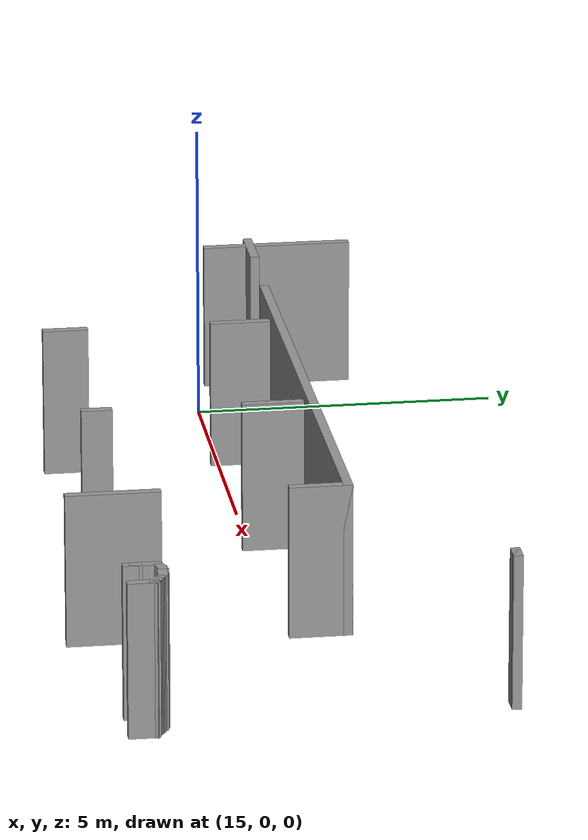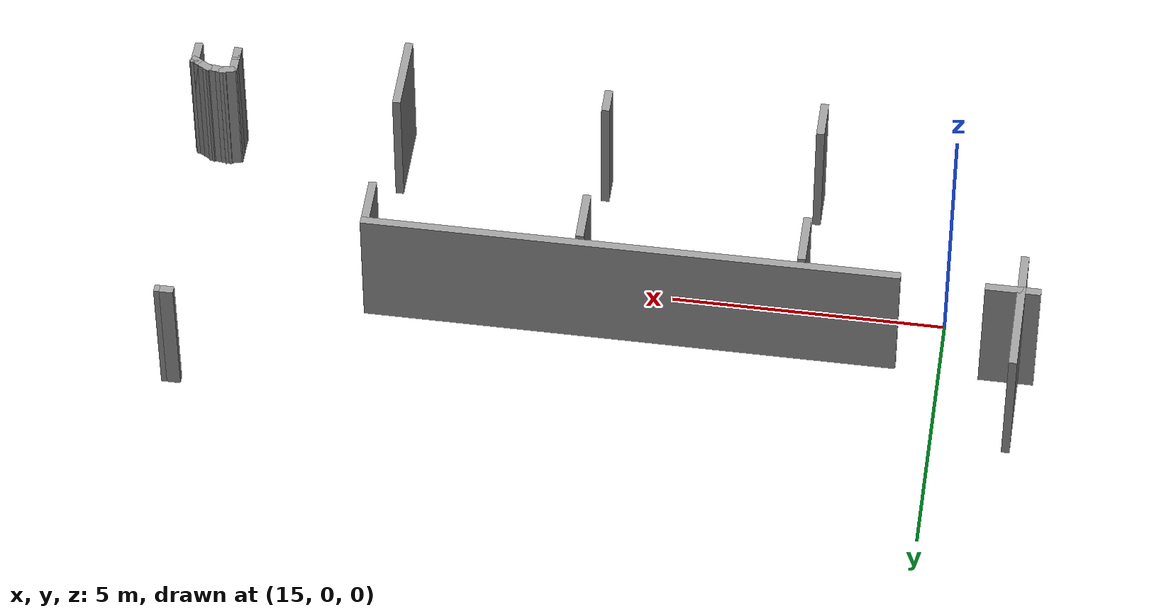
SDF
<sdf version="1.6">
 <model name="draft3">
  <pose>34.2026 -2.81154 0 0 -0 0</pose>
  <link name="Wall_26">
   <collision name="Wall_26_Collision">
    <geometry><box><size>1 0.15 2.5</size></box></geometry>
    <pose>0 0 1.25 0 -0 0</pose>
   </collision>
   <visual name="Wall_26_Visual">
    <pose>0 0 1.25 0 -0 0</pose>
    <geometry><box><size>1 0.15 2.5</size></box></geometry>
    <material>
     <script><uri>file://media/materials/scripts/gazebo.material</uri><name>Gazebo/Grey</name></script>
     <ambient>1 1 1 1</ambient>
    </material>
   </visual>
   <pose>-20.418 3.88071 0 0 -0 0</pose>
  </link>
  <link name="Wall_28">
   <collision name="Wall_28_Collision">
    <geometry><box><size>2.5 0.15 2.5</size></box></geometry>
    <pose>0 0 1.25 0 -0 0</pose>
   </collision>
   <visual name="Wall_28_Visual">
    <pose>0 0 1.25 0 -0 0</pose>
    <geometry><box><size>2.5 0.15 2.5</size></box></geometry>
    <material>
     <script><uri>file://media/materials/scripts/gazebo.material</uri><name>Gazebo/Grey</name></script>
     <ambient>1 1 1 1</ambient>
    </material>
   </visual>
   <pose>-20.5638 4.33405 0 0 0 -1.5708</pose>
  </link>
  <link name="Wall_30">
   <collision name="Wall_30_Collision">
    <geometry><box><size>9.75 0.15 2.5</size></box></geometry>
    <pose>0 0 1.25 0 -0 0</pose>
   </collision>
   <visual name="Wall_30_Visual">
    <pose>0 0 1.25 0 -0 0</pose>
    <geometry><box><size>9.75 0.15 2.5</size></box></geometry>
    <material>
     <script><uri>file://media/materials/scripts/gazebo.material</uri><name>Gazebo/Grey</name></script>
     <ambient>1 1 1 1</ambient>
    </material>
   </visual>
   <pose>-13.5307 3.83419 0 0 -0 0</pose>
  </link>
  <link name="Wall_32">
   <collision name="Wall_32_Collision">
    <geometry><box><size>1 0.15 2.5</size></box></geometry>
    <pose>0 0 1.25 0 -0 0</pose>
   </collision>
   <visual name="Wall_32_Visual">
    <pose>0 0 1.25 0 -0 0</pose>
    <geometry><box><size>1 0.15 2.5</size></box></geometry>
    <material>
     <script><uri>file://media/materials/scripts/gazebo.material</uri><name>Gazebo/Grey</name></script>
     <ambient>1 1 1 1</ambient>
    </material>
   </visual>
   <pose>-8.7307 3.40919 0 0 0 -1.5708</pose>
  </link>
  <link name="Wall_34">
   <collision name="Wall_34_Collision">
    <geometry><box><size>1 0.15 2.5</size></box></geometry>
    <pose>0 0 1.25 0 -0 0</pose>
   </collision>
   <visual name="Wall_34_Visual">
    <pose>0 0 1.25 0 -0 0</pose>
    <geometry><box><size>1 0.15 2.5</size></box></geometry>
    <material>
     <script><uri>file://media/materials/scripts/gazebo.material</uri><name>Gazebo/Grey</name></script>
     <ambient>1 1 1 1</ambient>
    </material>
   </visual>
   <pose>-16.6093 3.18914 0 0 -0 1.5708</pose>
  </link>
  <link name="Wall_36">
   <collision name="Wall_36_Collision">
    <geometry><box><size>1 0.15 2.5</size></box></geometry>
    <pose>0 0 1.25 0 -0 0</pose>
   </collision>
   <visual name="Wall_36_Visual">
    <pose>0 0 1.25 0 -0 0</pose>
    <geometry><box><size>1 0.15 2.5</size></box></geometry>
    <material>
     <script><uri>file://media/materials/scripts/gazebo.material</uri><name>Gazebo/Grey</name></script>
     <ambient>1 1 1 1</ambient>
    </material>
   </visual>
   <pose>-12.6083 3.18914 0 0 -0 1.5708</pose>
  </link>
  <link name="Wall_38">
   <collision name="Wall_38_Collision">
    <geometry><box><size>0.75 0.15 2.5</size></box></geometry>
    <pose>0 0 1.25 0 -0 0</pose>
   </collision>
   <visual name="Wall_38_Visual">
    <pose>0 0 1.25 0 -0 0</pose>
    <geometry><box><size>0.75 0.15 2.5</size></box></geometry>
    <material>
     <script><uri>file://media/materials/scripts/gazebo.material</uri><name>Gazebo/Grey</name></script>
     <ambient>1 1 1 1</ambient>
    </material>
   </visual>
   <pose>-16.6093 0.277516 0 0 0 -1.5708</pose>
  </link>
  <link name="Wall_40">
   <collision name="Wall_40_Collision">
    <geometry><box><size>0.5 0.15 2.5</size></box></geometry>
    <pose>0 0 1.25 0 -0 0</pose>
   </collision>
   <visual name="Wall_40_Visual">
    <pose>0 0 1.25 0 -0 0</pose>
    <geometry><box><size>0.5 0.15 2.5</size></box></geometry>
    <material>
     <script><uri>file://media/materials/scripts/gazebo.material</uri><name>Gazebo/Grey</name></script>
     <ambient>1 1 1 1</ambient>
    </material>
   </visual>
   <pose>-12.6548 0.355992 0 0 0 -1.5708</pose>
  </link>
  <link name="Wall_42">
   <collision name="Wall_42_Collision">
    <geometry><box><size>1.5 0.15 2.5</size></box></geometry>
    <pose>0 0 1.25 0 -0 0</pose>
   </collision>
   <visual name="Wall_42_Visual">
    <pose>0 0 1.25 0 -0 0</pose>
    <geometry><box><size>1.5 0.15 2.5</size></box></geometry>
    <material>
     <script><uri>file://media/materials/scripts/gazebo.material</uri><name>Gazebo/Grey</name></script>
     <ambient>1 1 1 1</ambient>
    </material>
   </visual>
   <pose>-8.83982 0.181659 0 0 0 -1.5708</pose>
  </link>
  <link name="Wall_449">
   <collision name="Wall_449_Collision">
    <geometry><box><size>0.25 0.15 2.5</size></box></geometry>
    <pose>0 0 1.25 0 -0 0</pose>
   </collision>
   <visual name="Wall_449_Visual">
    <pose>0 0 1.25 0 -0 0</pose>
    <geometry><box><size>0.25 0.15 2.5</size></box></geometry>
    <material>
     <script><uri>file://media/materials/scripts/gazebo.material</uri><name>Gazebo/Grey</name></script>
     <ambient>1 1 1 1</ambient>
    </material>
   </visual>
   <pose>-5.50882 5.926 0 0 -0 0</pose>
  </link>
  <link name="Wall_450">
   <collision name="Wall_450_Collision">
    <geometry><box><size>0.25 0.15 2.5</size></box></geometry>
    <pose>0 0 1.25 0 -0 0</pose>
   </collision>
   <visual name="Wall_450_Visual">
    <pose>0 0 1.25 0 -0 0</pose>
    <geometry><box><size>0.25 0.15 2.5</size></box></geometry>
    <material>
     <script><uri>file://media/materials/scripts/gazebo.material</uri><name>Gazebo/Grey</name></script>
     <ambient>1 1 1 1</ambient>
    </material>
   </visual>
   <pose>-5.40882 5.926 0 0 -0 0</pose>
  </link>
  <link name="Wall_468">
   <collision name="Wall_468_Collision">
    <geometry><box><size>0.3 0.15 2.5</size></box></geometry>
    <pose>0 0 1.25 0 -0 0</pose>
   </collision>
   <visual name="Wall_468_Visual">
    <pose>0 0 1.25 0 -0 0</pose>
    <geometry><box><size>0.3 0.15 2.5</size></box></geometry>
    <material>
     <script><uri>file://media/materials/scripts/gazebo.material</uri><name>Gazebo/Grey</name></script>
     <ambient>1 1 1 1</ambient>
    </material>
   </visual>
   <pose>-5.73702 0.419079 0 0 -0 1.5708</pose>
  </link>
  <link name="Wall_469">
   <collision name="Wall_469_Collision">
    <geometry><box><size>0.5 0.15 2.5</size></box></geometry>
    <pose>0 0 1.25 0 -0 0</pose>
   </collision>
   <visual name="Wall_469_Visual">
    <pose>0 0 1.25 0 -0 0</pose>
    <geometry><box><size>0.5 0.15 2.5</size></box></geometry>
    <material>
     <script><uri>file://media/materials/scripts/gazebo.material</uri><name>Gazebo/Grey</name></script>
     <ambient>1 1 1 1</ambient>
    </material>
   </visual>
   <pose>-5.73702 0.319078 0 0 0 -1.5708</pose>
  </link>
  <link name="Wall_470">
   <collision name="Wall_470_Collision">
    <geometry><box><size>0.25 0.15 2.5</size></box></geometry>
    <pose>0 0 1.25 0 -0 0</pose>
   </collision>
   <visual name="Wall_470_Visual">
    <pose>0 0 1.25 0 -0 0</pose>
    <geometry><box><size>0.25 0.15 2.5</size></box></geometry>
    <material>
     <script><uri>file://media/materials/scripts/gazebo.material</uri><name>Gazebo/Grey</name></script>
     <ambient>1 1 1 1</ambient>
    </material>
   </visual>
   <pose>-5.73702 0.094079 0 0 0 -1.5708</pose>
  </link>
  <link name="Wall_480">
   <collision name="Wall_480_Collision">
    <geometry><box><size>0.5 0.15 2.5</size></box></geometry>
    <pose>0 0 1.25 0 -0 0</pose>
   </collision>
   <visual name="Wall_480_Visual">
    <pose>0 0 1.25 0 -0 0</pose>
    <geometry><box><size>0.5 0.15 2.5</size></box></geometry>
    <material>
     <script><uri>file://media/materials/scripts/gazebo.material</uri><name>Gazebo/Grey</name></script>
     <ambient>1 1 1 1</ambient>
    </material>
   </visual>
   <pose>-5.00168 0.203187 0 0 -0 1.5708</pose>
  </link>
  <link name="Wall_481">
   <collision name="Wall_481_Collision">
    <geometry><box><size>0.25 0.15 2.5</size></box></geometry>
    <pose>0 0 1.25 0 -0 0</pose>
   </collision>
   <visual name="Wall_481_Visual">
    <pose>0 0 1.25 0 -0 0</pose>
    <geometry><box><size>0.25 0.15 2.5</size></box></geometry>
    <material>
     <script><uri>file://media/materials/scripts/gazebo.material</uri><name>Gazebo/Grey</name></script>
     <ambient>1 1 1 1</ambient>
    </material>
   </visual>
   <pose>-5.04498 0.403187 0 0 -0 2.61799</pose>
  </link>
  <link name="Wall_482">
   <collision name="Wall_482_Collision">
    <geometry><box><size>0.25 0.15 2.5</size></box></geometry>
    <pose>0 0 1.25 0 -0 0</pose>
   </collision>
   <visual name="Wall_482_Visual">
    <pose>0 0 1.25 0 -0 0</pose>
    <geometry><box><size>0.25 0.15 2.5</size></box></geometry>
    <material>
     <script><uri>file://media/materials/scripts/gazebo.material</uri><name>Gazebo/Grey</name></script>
     <ambient>1 1 1 1</ambient>
    </material>
   </visual>
   <pose>-5.13158 0.453187 0 0 -0 2.61799</pose>
  </link>
  <link name="Wall_483">
   <collision name="Wall_483_Collision">
    <geometry><box><size>0.25 0.15 2.5</size></box></geometry>
    <pose>0 0 1.25 0 -0 0</pose>
   </collision>
   <visual name="Wall_483_Visual">
    <pose>0 0 1.25 0 -0 0</pose>
    <geometry><box><size>0.25 0.15 2.5</size></box></geometry>
    <material>
     <script><uri>file://media/materials/scripts/gazebo.material</uri><name>Gazebo/Grey</name></script>
     <ambient>1 1 1 1</ambient>
    </material>
   </visual>
   <pose>-5.21818 0.503187 0 0 -0 2.61799</pose>
  </link>
  <link name="Wall_484">
   <collision name="Wall_484_Collision">
    <geometry><box><size>0.308133 0.15 2.5</size></box></geometry>
    <pose>0 0 1.25 0 -0 0</pose>
   </collision>
   <visual name="Wall_484_Visual">
    <pose>0 0 1.25 0 -0 0</pose>
    <geometry><box><size>0.308133 0.15 2.5</size></box></geometry>
    <material>
     <script><uri>file://media/materials/scripts/gazebo.material</uri><name>Gazebo/Grey</name></script>
     <ambient>1 1 1 1</ambient>
    </material>
   </visual>
   <pose>-5.34055 0.53532 0 0 -0 3.05161</pose>
  </link>
  <link name="Wall_485">
   <collision name="Wall_485_Collision">
    <geometry><box><size>0.28225 0.15 2.5</size></box></geometry>
    <pose>0 0 1.25 0 -0 0</pose>
   </collision>
   <visual name="Wall_485_Visual">
    <pose>0 0 1.25 0 -0 0</pose>
    <geometry><box><size>0.28225 0.15 2.5</size></box></geometry>
    <material>
     <script><uri>file://media/materials/scripts/gazebo.material</uri><name>Gazebo/Grey</name></script>
     <ambient>1 1 1 1</ambient>
    </material>
   </visual>
   <pose>-5.48574 0.549066 0 0 -0 3.04192</pose>
  </link>
  <link name="Wall_486">
   <collision name="Wall_486_Collision">
    <geometry><box><size>0.300788 0.15 2.5</size></box></geometry>
    <pose>0 0 1.25 0 -0 0</pose>
   </collision>
   <visual name="Wall_486_Visual">
    <pose>0 0 1.25 0 -0 0</pose>
    <geometry><box><size>0.300788 0.15 2.5</size></box></geometry>
    <material>
     <script><uri>file://media/materials/scripts/gazebo.material</uri><name>Gazebo/Grey</name></script>
     <ambient>1 1 1 1</ambient>
    </material>
   </visual>
   <pose>-5.6246 0.535841 0 0 0 -2.87534</pose>
  </link>
  <static>1</static>
 </model>
</sdf>
